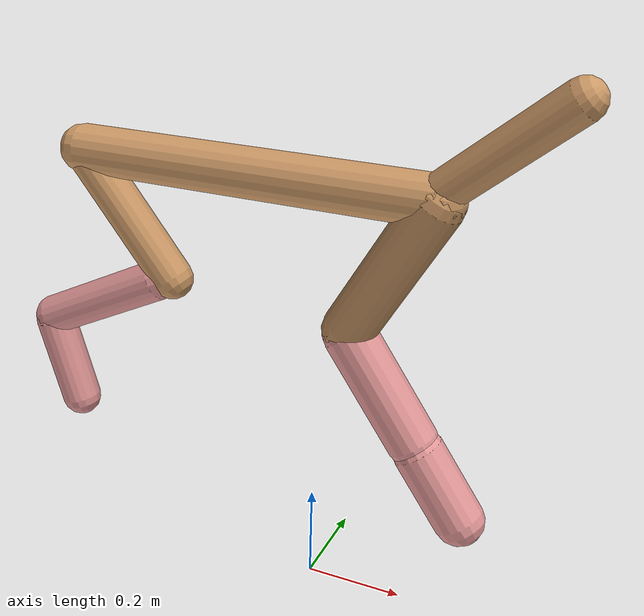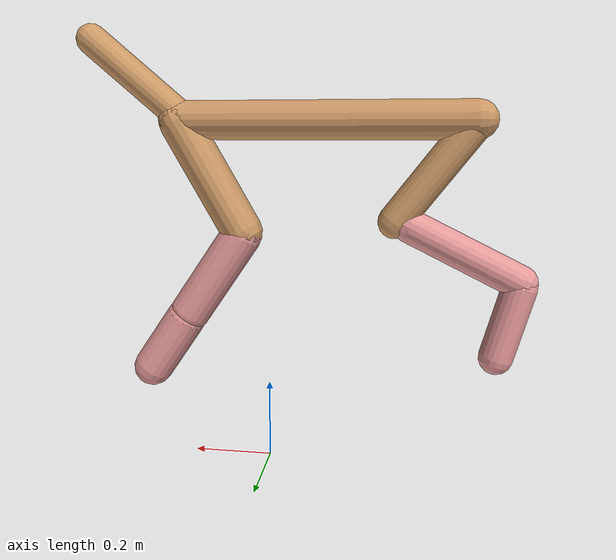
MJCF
<mujoco model="cheetah">
  <compiler angle="radian" coordinate="local" inertiafromgeom="true" settotalmass="14" />
  <default>
    <joint armature=".1" damping=".01" limited="true" solimplimit="0 .8 .03" solreflimit=".02 1" stiffness="8" />
    <geom conaffinity="0" condim="3" contype="1" friction="0.8 .1 .1" rgba="0.8 0.6 .4 1" solimp="0.0 0.8 0.01" solref="0.02 1" />
    <motor ctrllimited="true" ctrlrange="-1 1" />
  </default>
  <size nstack="300000" nuser_geom="1" />
  <option gravity="0 0 -9.81" timestep="0.01" />
  <worldbody>
    <body name="torso" pos="0.0 0.0 0.8686086004789926">
      <joint armature="0" axis="1 0 0" damping="0" limited="false" name="ignorex" pos="0 0 0" stiffness="0" type="slide" />
      <joint armature="0" axis="0 0 1" damping="0" limited="false" name="ignorez" pos="0 0 0" stiffness="0" type="slide" />
      <joint armature="0" axis="0 1 0" damping="0" limited="false" name="ignorey" pos="0 0 0" stiffness="0" type="hinge" />
      <geom fromto="-0.5 0.0 0.0 0.22616036127505984 0.0 0.0" name="torso" size="0.04799652849136735" type="capsule" />
      <geom axisangle="0 1 0 .87" name="head" pos="0.32616036127505976 0.0 0.1" size="0.03839428033383285 0.15" type="capsule" />

      <body name="bthigh" pos="-.5 0 0">
        <joint axis="0 1 0" damping="6" name="bthigh" pos="0 0 0" range="-.52 1.05" stiffness="240" type="hinge" />
        <geom axisangle="0 1 0 -3.8" name="bthigh" pos="0.0994460929479784 0.0 -0.12927992083237191" size="0.04189472384698981 0.1440915248875554" type="capsule" />
        <body name="bshin" pos="0.1588921858959568 0.0 -0.24855984166474385">
          <joint axis="0 1 0" damping="4.5" name="bshin" pos="0 0 0" range="-.785 .785" stiffness="180" type="hinge" />
          <geom axisangle="0 1 0 -2.03" name="bshin" pos="-0.13915941567974088 0.0 -0.06957970783987044" rgba="0.9 0.6 0.6 1" size="0.04189472384698981 0.14906019815954008" type="capsule" />
          <body name="bfoot" pos="-0.27831883135948177 0.0 -0.13915941567974088">
            <joint axis="0 1 0" damping="3" name="bfoot" pos="0 0 0" range="-.4 .785" stiffness="120" type="hinge" />
            <geom axisangle="0 1 0 -.27" name="bfoot" pos="0.0298259853266412 0.0 -0.09643735255613987" rgba="0.9 0.6 0.6 1" size="0.04189472384698981 0.09341105751331179" type="capsule" />
            <inertial mass="10" />
          </body>
        </body>
      </body>
      <body name="fthigh" pos="0.22616036127505978 0.0 0.0">
        <joint axis="0 1 0" damping="4.5" name="fthigh" pos="0 0 0" range="-1.5 0.8" stiffness="180" type="hinge" />
        <geom axisangle="0 1 0 .52" name="fthigh" pos="-0.08181932998109374 0.0 -0.14026170853901782" size="0.05119937739266272 0.1564570542507385" type="capsule" />
        <body name="fshin" pos="-0.1636386599621875 0.0 -0.28052341707803563">
          <joint axis="0 1 0" damping="3" name="fshin" pos="0 0 0" range="-1.2 1.1" stiffness="120" type="hinge" />
          <geom axisangle="0 1 0 -.6" name="fshin" pos="0.07594580203451984 0.0 -0.10515572589395053" rgba="0.9 0.6 0.6 1" size="0.05119937739266272 0.12469509586900963" type="capsule" />
          <body name="ffoot" pos="0.15189160406903968 0.0 -0.21031145178790106">
            <joint axis="0 1 0" damping="1.5" name="ffoot" pos="0 0 0" range="-3.1 -0.3" stiffness="60" type="hinge" />
            <geom axisangle="0 1 0 -.6" name="ffoot" pos="0.05167609481891548 0.0 -0.08038503638497965" rgba="0.9 0.6 0.6 1" size="0.05119937739266272 0.08234581802670449" type="capsule" />
            <inertial mass="10" />
          </body>
        </body>
      </body>
    </body>
  </worldbody>
  <actuator>
    <motor gear="120" joint="bthigh" name="bthigh" />
    <motor gear="90" joint="bshin" name="bshin" />
    <motor gear="60" joint="bfoot" name="bfoot" />
    <motor gear="120" joint="fthigh" name="fthigh" />
    <motor gear="60" joint="fshin" name="fshin" />
    <motor gear="30" joint="ffoot" name="ffoot" />
  </actuator>
</mujoco>
